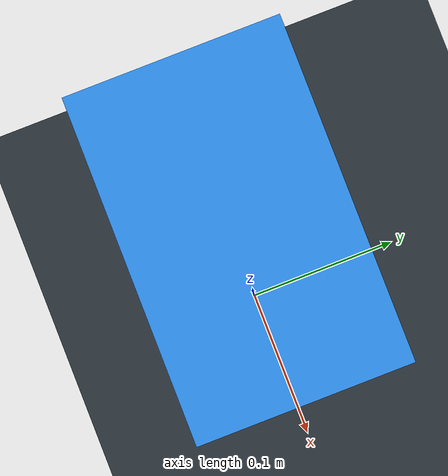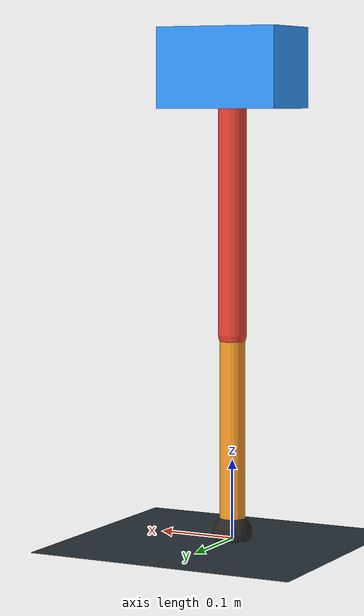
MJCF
<mujoco model="single_axis_two_bar">
  <compiler angle="radian" inertiafromgeom="true"/>
  <option timestep="0.001" integrator="implicitfast" gravity="0 0 -9.81"/>
  <default>
    <joint damping="0.08"/>
    <geom friction="1.2 0.01 0.0001" condim="3"/>
  </default>
  <worldbody>
    <geom name="floor" type="plane" size="5 5 0.1" rgba="0.18 0.22 0.25 1"/>
    <body name="carriage" pos="0 0 0.5901026682576098">
      <joint name="pole_slide" type="slide" axis="0 0 1"/>
      <geom name="payload" type="box" size="0.08 0.05 0.05" mass="2.7599476394949525" rgba="0.2 0.6 1 1"/>
      <body name="thigh" pos="0 0 0">
        <joint name="hip" type="hinge" axis="0 1 0"/>
        <geom name="thigh_link" type="capsule" fromto="0 0 0 0 0 -0.3321595913369849" size="0.018" mass="0.236668097929358" rgba="0.9 0.25 0.2 1"/>
        <body name="shank" pos="0 0 -0.3321595913369849">
          <joint name="knee" type="hinge" axis="0 1 0"/>
          <geom name="shank_link" type="capsule" fromto="0 0 0 0 0 -0.25042047903168496" size="0.016" mass="0.17842790032475697" rgba="0.95 0.6 0.15 1"/>
          <geom name="foot" type="sphere" pos="0 0 -0.25042047903168496" size="0.025" mass="0.03" rgba="0.15 0.15 0.15 1"/>
          <site name="toe" pos="0 0 -0.25042047903168496" size="0.008"/>
        </body>
      </body>
    </body>
  </worldbody>
  <actuator>
    <motor name="hip_motor" joint="hip" ctrlrange="-18.53469475288769 18.53469475288769"/>
    <motor name="knee_motor" joint="knee" ctrlrange="-82.25087453199599 82.25087453199599"/>
  </actuator>
</mujoco>
